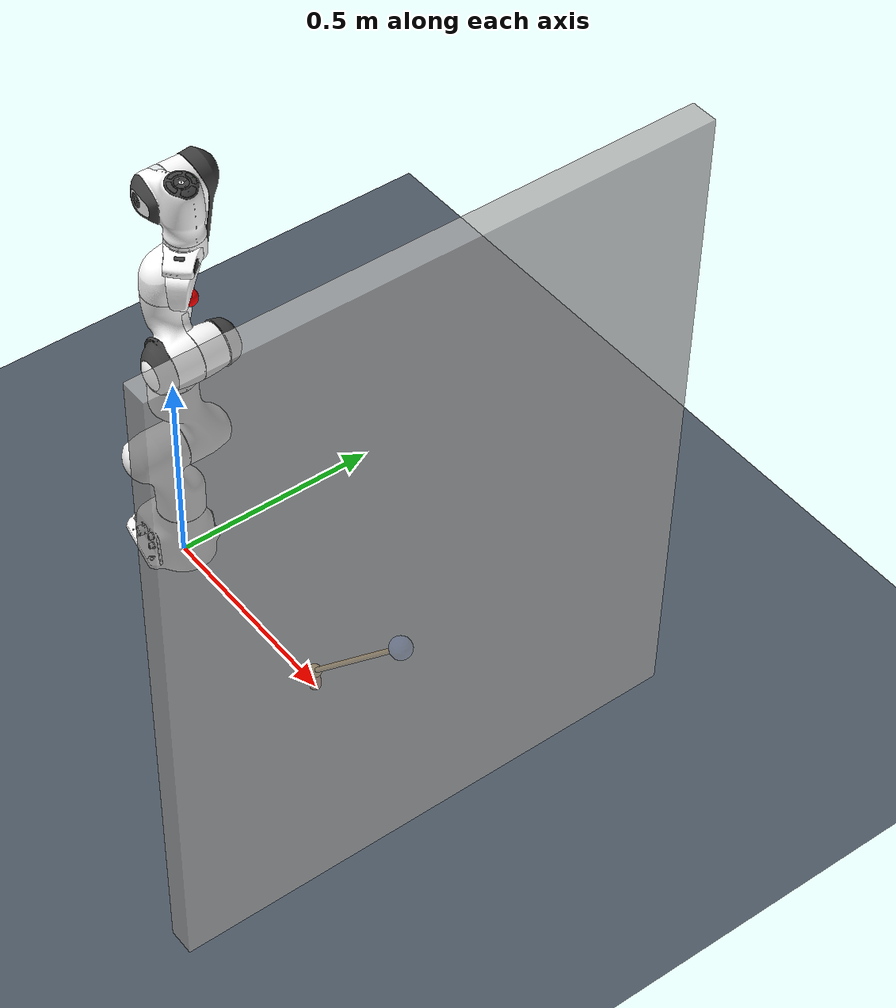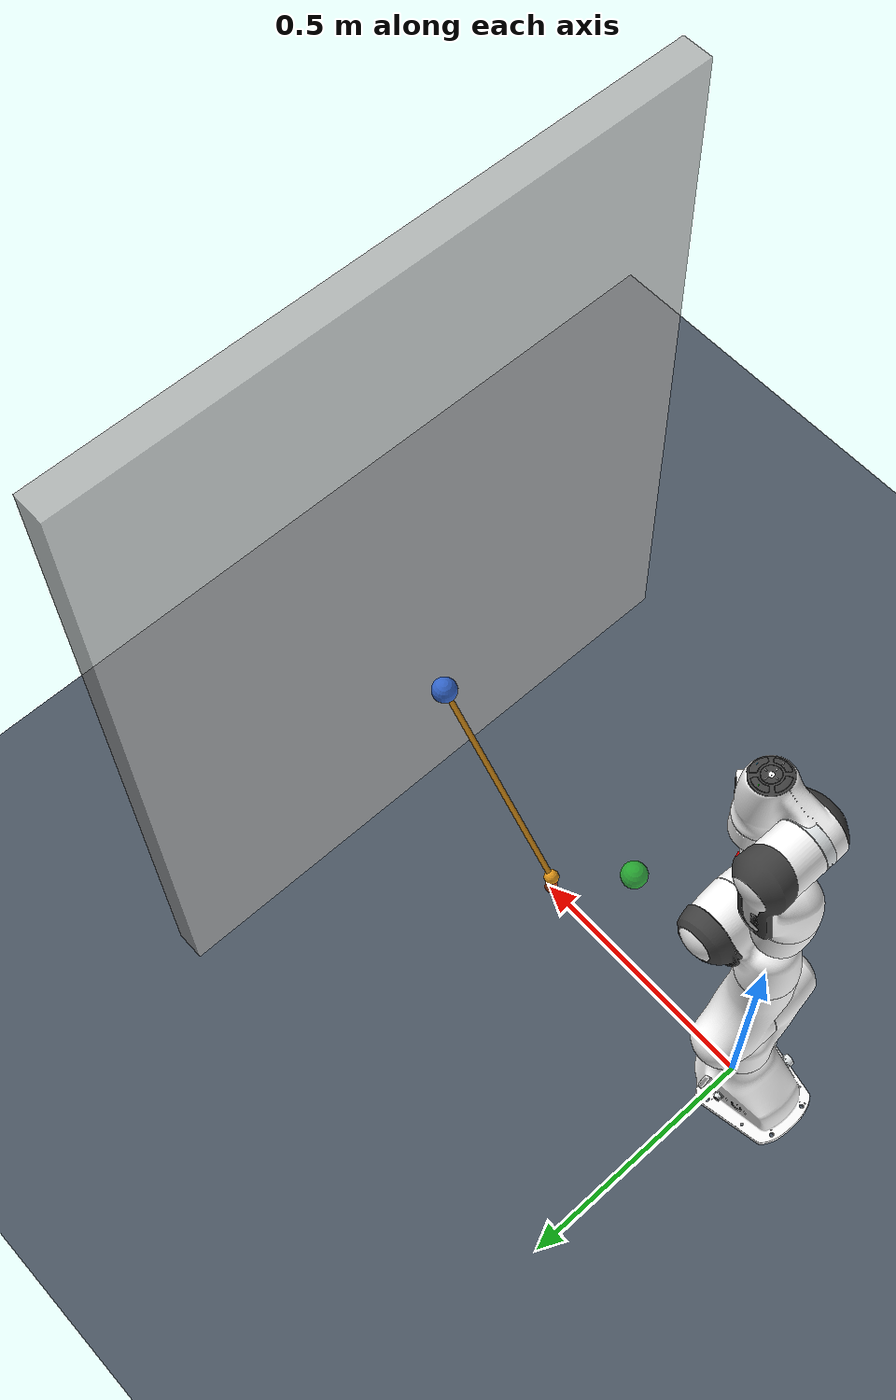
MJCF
<?xml version="1.0" encoding="utf-8"?>
<mujoco model="franka_cable">

  <!-- Official model meshes (mujoco_menagerie) via absolute path -->
  <compiler angle="radian"
            meshdir="/home/eduardo/.cache/robot_descriptions/mujoco_menagerie/franka_emika_panda/assets"
            autolimits="true"/>

  <option timestep="0.002" integrator="implicitfast" impratio="10"
          gravity="0 0 -9.81" cone="elliptic"/>

  <!-- Panda defaults (inertia, materials, geoms) -->
  <default>
    <default class="panda">
      <material specular="0.5" shininess="0.25"/>
      <joint armature="0.1" damping="1" axis="0 0 1" range="-2.8973 2.8973"/>
      <default class="panda/visual">
        <geom type="mesh" contype="0" conaffinity="0" group="2"/>
      </default>
      <default class="panda/collision">
        <geom type="mesh" group="3"/>
        <default class="panda/fingertip_pad_collision_1">
          <geom type="box" size="0.0085 0.004 0.0085" pos="0 0.0055 0.0445"/>
        </default>
        <default class="panda/fingertip_pad_collision_2">
          <geom type="box" size="0.003 0.002 0.003" pos="0.0055 0.002 0.05"/>
        </default>
        <default class="panda/fingertip_pad_collision_3">
          <geom type="box" size="0.003 0.002 0.003" pos="-0.0055 0.002 0.05"/>
        </default>
        <default class="panda/fingertip_pad_collision_4">
          <geom type="box" size="0.003 0.002 0.0035" pos="0.0055 0.002 0.0395"/>
        </default>
        <default class="panda/fingertip_pad_collision_5">
          <geom type="box" size="0.003 0.002 0.0035" pos="-0.0055 0.002 0.0395"/>
        </default>
      </default>
      <default class="panda/finger">
        <joint axis="0 1 0" type="slide" range="0 0.04" armature="0.1" damping="1"/>
      </default>
      <site size="0.001" rgba="0.5 0.5 0.5 0.3" group="4"/>
    </default>
  </default>

  <visual>
    <headlight diffuse="0.6 0.6 0.6" ambient="0.3 0.3 0.3" specular="0 0 0"/>
    <rgba haze="0.15 0.25 0.35 1"/>
    <global offwidth="1280" offheight="720" azimuth="150" elevation="-25"/>
  </visual>

  <asset>
    <!-- Panda materials (from panda_nohand.xml) -->
    <material class="panda" name="white"      rgba="1 1 1 1"/>
    <material class="panda" name="off_white"  rgba="0.901961 0.921569 0.929412 1"/>
    <material class="panda" name="dark_grey"  rgba="0.25 0.25 0.25 1"/>
    <material class="panda" name="black"      rgba="0.25 0.25 0.25 1"/>
    <material class="panda" name="green"      rgba="0 1 0 1"/>
    <material class="panda" name="light_blue" rgba="0.039216 0.541176 0.780392 1"/>

    <!-- Additional scene materials -->
    <material name="anchor_mat"    rgba="0.20 0.40 0.80 1"/>
    <material name="floor_mat"     rgba="0.30 0.35 0.40 1"/>
    <material name="wall_mat"      rgba="0.70 0.70 0.70 0.8"/>
    <material name="connector_mat" rgba="0.8 0.3 0.1 1"/>

    <!-- Panda collision meshes -->
    <mesh name="link0_c"   file="link0.stl"/>
    <mesh name="link1_c"   file="link1.stl"/>
    <mesh name="link2_c"   file="link2.stl"/>
    <mesh name="link3_c"   file="link3.stl"/>
    <mesh name="link4_c"   file="link4.stl"/>
    <mesh name="link5_c0"  file="link5_collision_0.obj"/>
    <mesh name="link5_c1"  file="link5_collision_1.obj"/>
    <mesh name="link5_c2"  file="link5_collision_2.obj"/>
    <mesh name="link6_c"   file="link6.stl"/>
    <mesh name="link7_c"   file="link7.stl"/>

    <!-- Panda visual meshes -->
    <mesh file="link0_0.obj"/>
    <mesh file="link0_1.obj"/>
    <mesh file="link0_2.obj"/>
    <mesh file="link0_3.obj"/>
    <mesh file="link0_4.obj"/>
    <mesh file="link0_5.obj"/>
    <mesh file="link0_7.obj"/>
    <mesh file="link0_8.obj"/>
    <mesh file="link0_9.obj"/>
    <mesh file="link0_10.obj"/>
    <mesh file="link0_11.obj"/>
    <mesh file="link1.obj"/>
    <mesh file="link2.obj"/>
    <mesh file="link3_0.obj"/>
    <mesh file="link3_1.obj"/>
    <mesh file="link3_2.obj"/>
    <mesh file="link3_3.obj"/>
    <mesh file="link4_0.obj"/>
    <mesh file="link4_1.obj"/>
    <mesh file="link4_2.obj"/>
    <mesh file="link4_3.obj"/>
    <mesh file="link5_0.obj"/>
    <mesh file="link5_1.obj"/>
    <mesh file="link5_2.obj"/>
    <mesh file="link6_0.obj"/>
    <mesh file="link6_1.obj"/>
    <mesh file="link6_2.obj"/>
    <mesh file="link6_3.obj"/>
    <mesh file="link6_4.obj"/>
    <mesh file="link6_5.obj"/>
    <mesh file="link6_6.obj"/>
    <mesh file="link6_7.obj"/>
    <mesh file="link6_8.obj"/>
    <mesh file="link6_9.obj"/>
    <mesh file="link6_10.obj"/>
    <mesh file="link6_11.obj"/>
    <mesh file="link6_12.obj"/>
    <mesh file="link6_13.obj"/>
    <mesh file="link6_14.obj"/>
    <mesh file="link6_15.obj"/>
    <mesh file="link6_16.obj"/>
    <mesh file="link7_0.obj"/>
    <mesh file="link7_1.obj"/>
    <mesh file="link7_2.obj"/>
    <mesh file="link7_3.obj"/>
    <mesh file="link7_4.obj"/>
    <mesh file="link7_5.obj"/>
    <mesh file="link7_6.obj"/>
    <mesh file="link7_7.obj"/>

    <!-- Franka Hand meshes -->
    <mesh name="hand_c"  file="hand.stl"/>
    <mesh file="hand_0.obj"/>
    <mesh file="hand_1.obj"/>
    <mesh file="hand_2.obj"/>
    <mesh file="hand_3.obj"/>
    <mesh file="hand_4.obj"/>
    <mesh file="finger_0.obj"/>
    <mesh file="finger_1.obj"/>
  </asset>

  <worldbody>

    <!-- Lighting and floor -->
    <light name="top" pos="0 0 2.5" dir="0 0 -1" directional="true"/>
    <geom name="floor" type="plane" pos="0 0 0" size="3 3 0.05"
          material="floor_mat" contype="1" conaffinity="1"/>

    <!-- Visual wall where cable is fixed (X=0.85m) -->
    <geom name="wall" type="box" pos="0.88 0 0.75" size="0.03 0.6 0.75"
          material="wall_mat" contype="0" conaffinity="0"/>

    <body name="link0" childclass="panda">
      <inertial mass="0.629769" pos="-0.041018 -0.00014 0.049974"
        fullinertia="0.00315 0.00388 0.004285 8.2904e-7 0.00015 8.2299e-6"/>
      <geom mesh="link0_0"  material="off_white" class="panda/visual"/>
      <geom mesh="link0_1"  material="dark_grey" class="panda/visual"/>
      <geom mesh="link0_2"  material="off_white" class="panda/visual"/>
      <geom mesh="link0_3"  material="dark_grey" class="panda/visual"/>
      <geom mesh="link0_4"  material="off_white" class="panda/visual"/>
      <geom mesh="link0_5"  material="dark_grey" class="panda/visual"/>
      <geom mesh="link0_7"  material="white"     class="panda/visual"/>
      <geom mesh="link0_8"  material="white"     class="panda/visual"/>
      <geom mesh="link0_9"  material="dark_grey" class="panda/visual"/>
      <geom mesh="link0_10" material="off_white" class="panda/visual"/>
      <geom mesh="link0_11" material="white"     class="panda/visual"/>
      <geom mesh="link0_c"  class="panda/collision"/>

      <body name="link1" pos="0 0 0.333">
        <inertial mass="4.970684" pos="0.003875 0.002081 -0.04762"
          fullinertia="0.70337 0.70661 0.0091170 -0.00013900 0.0067720 0.019169"/>
        <joint name="joint1"/>
        <geom material="white" mesh="link1"   class="panda/visual"/>
        <geom mesh="link1_c"                  class="panda/collision"/>

        <body name="link2" quat="1 -1 0 0">
          <inertial mass="0.646926" pos="-0.003141 -0.02872 0.003495"
            fullinertia="0.0079620 2.8110e-2 2.5995e-2 -3.925e-3 1.0254e-2 7.04e-4"/>
          <joint name="joint2" range="-1.7628 1.7628"/>
          <geom material="white" mesh="link2" class="panda/visual"/>
          <geom mesh="link2_c"                class="panda/collision"/>

          <body name="link3" pos="0 -0.316 0" quat="1 1 0 0">
            <joint name="joint3"/>
            <inertial mass="3.228604" pos="2.7518e-2 3.9252e-2 -6.6502e-2"
              fullinertia="3.7242e-2 3.6155e-2 1.083e-2 -4.761e-3 -1.1396e-2 -1.2805e-2"/>
            <geom mesh="link3_0" material="white"     class="panda/visual"/>
            <geom mesh="link3_1" material="white"     class="panda/visual"/>
            <geom mesh="link3_2" material="white"     class="panda/visual"/>
            <geom mesh="link3_3" material="dark_grey" class="panda/visual"/>
            <geom mesh="link3_c"                      class="panda/collision"/>

            <body name="link4" pos="0.0825 0 0" quat="1 1 0 0">
              <inertial mass="3.587895" pos="-5.317e-2 1.04419e-1 2.7454e-2"
                fullinertia="2.5853e-2 1.9552e-2 2.8323e-2 7.796e-3 -1.332e-3 8.641e-3"/>
              <joint name="joint4" range="-3.0718 -0.0698"/>
              <geom mesh="link4_0" material="white"     class="panda/visual"/>
              <geom mesh="link4_1" material="white"     class="panda/visual"/>
              <geom mesh="link4_2" material="dark_grey" class="panda/visual"/>
              <geom mesh="link4_3" material="white"     class="panda/visual"/>
              <geom mesh="link4_c"                      class="panda/collision"/>

              <body name="link5" pos="-0.0825 0.384 0" quat="1 -1 0 0">
                <inertial mass="1.225946" pos="-1.1953e-2 4.1065e-2 -3.8437e-2"
                  fullinertia="3.5549e-2 2.9474e-2 8.627e-3 -2.117e-3 -4.037e-3 2.29e-4"/>
                <joint name="joint5"/>
                <geom mesh="link5_0" material="dark_grey" class="panda/visual"/>
                <geom mesh="link5_1" material="white"     class="panda/visual"/>
                <geom mesh="link5_2" material="white"     class="panda/visual"/>
                <geom mesh="link5_c0" class="panda/collision"/>
                <geom mesh="link5_c1" class="panda/collision"/>
                <geom mesh="link5_c2" class="panda/collision"/>

                <body name="link6" quat="1 1 0 0">
                  <inertial mass="1.666555" pos="6.0149e-2 -1.4117e-2 -1.0517e-2"
                    fullinertia="1.964e-3 4.354e-3 5.433e-3 1.09e-4 -1.158e-3 3.41e-4"/>
                  <joint name="joint6" range="-0.0175 3.7525"/>
                  <geom mesh="link6_0"  material="off_white"  class="panda/visual"/>
                  <geom mesh="link6_1"  material="white"      class="panda/visual"/>
                  <geom mesh="link6_2"  material="dark_grey"  class="panda/visual"/>
                  <geom mesh="link6_3"  material="white"      class="panda/visual"/>
                  <geom mesh="link6_4"  material="white"      class="panda/visual"/>
                  <geom mesh="link6_5"  material="white"      class="panda/visual"/>
                  <geom mesh="link6_6"  material="white"      class="panda/visual"/>
                  <geom mesh="link6_7"  material="light_blue" class="panda/visual"/>
                  <geom mesh="link6_8"  material="light_blue" class="panda/visual"/>
                  <geom mesh="link6_9"  material="dark_grey"  class="panda/visual"/>
                  <geom mesh="link6_10" material="dark_grey"  class="panda/visual"/>
                  <geom mesh="link6_11" material="white"      class="panda/visual"/>
                  <geom mesh="link6_12" material="green"      class="panda/visual"/>
                  <geom mesh="link6_13" material="white"      class="panda/visual"/>
                  <geom mesh="link6_14" material="dark_grey"  class="panda/visual"/>
                  <geom mesh="link6_15" material="dark_grey"  class="panda/visual"/>
                  <geom mesh="link6_16" material="white"      class="panda/visual"/>
                  <geom mesh="link6_c"  class="panda/collision"/>

                  <body name="link7" pos="0.088 0 0" quat="1 1 0 0">
                    <inertial mass="7.35522e-01" pos="1.0517e-2 -4.252e-3 6.1597e-2"
                      fullinertia="1.2516e-2 1.0027e-2 4.815e-3 -4.28e-4 -1.196e-3 -7.41e-4"/>
                    <joint name="joint7"/>
                    <geom mesh="link7_0" material="white"     class="panda/visual"/>
                    <geom mesh="link7_1" material="dark_grey" class="panda/visual"/>
                    <geom mesh="link7_2" material="dark_grey" class="panda/visual"/>
                    <geom mesh="link7_3" material="dark_grey" class="panda/visual"/>
                    <geom mesh="link7_4" material="dark_grey" class="panda/visual"/>
                    <geom mesh="link7_5" material="dark_grey" class="panda/visual"/>
                    <geom mesh="link7_6" material="dark_grey" class="panda/visual"/>
                    <geom mesh="link7_7" material="white"     class="panda/visual"/>
                    <geom mesh="link7_c" class="panda/collision"/>

                    <!-- Franka Hand (garra paralela) -->
                    <body name="hand" pos="0 0 0.107" quat="0.9238795 0 0 -0.3826834" childclass="panda">
                      <inertial mass="0.73" pos="-0.01 0 0.03" diaginertia="0.001 0.0025 0.0017"/>
                      <geom mesh="hand_0" material="off_white" class="panda/visual"/>
                      <geom mesh="hand_1" material="black"     class="panda/visual"/>
                      <geom mesh="hand_2" material="black"     class="panda/visual"/>
                      <geom mesh="hand_3" material="white"     class="panda/visual"/>
                      <geom mesh="hand_4" material="off_white" class="panda/visual"/>
                      <geom mesh="hand_c" class="panda/collision"/>
                      <!-- TCP: point between fingertips — controller reference -->
                      <site name="end_effector" pos="0 0 0.112" size="0.02"
                            rgba="1 0 0 1" group="1"/>
                      <body name="left_finger" pos="0 0 0.0584">
                        <inertial mass="0.015" pos="0 0 0" diaginertia="2.375e-6 2.375e-6 7.5e-7"/>
                        <joint name="finger_joint1" class="panda/finger"/>
                        <geom mesh="finger_0" material="off_white" class="panda/visual"/>
                        <geom mesh="finger_1" material="black"     class="panda/visual"/>
                        <geom mesh="finger_0" class="panda/collision"/>
                        <geom class="panda/fingertip_pad_collision_1"/>
                        <geom class="panda/fingertip_pad_collision_2"/>
                        <geom class="panda/fingertip_pad_collision_3"/>
                        <geom class="panda/fingertip_pad_collision_4"/>
                        <geom class="panda/fingertip_pad_collision_5"/>
                      </body>
                      <body name="right_finger" pos="0 0 0.0584" quat="0 0 0 1">
                        <inertial mass="0.015" pos="0 0 0" diaginertia="2.375e-6 2.375e-6 7.5e-7"/>
                        <joint name="finger_joint2" class="panda/finger"/>
                        <geom mesh="finger_0" material="off_white" class="panda/visual"/>
                        <geom mesh="finger_1" material="black"     class="panda/visual"/>
                        <geom mesh="finger_0" class="panda/collision"/>
                        <geom class="panda/fingertip_pad_collision_1"/>
                        <geom class="panda/fingertip_pad_collision_2"/>
                        <geom class="panda/fingertip_pad_collision_3"/>
                        <geom class="panda/fingertip_pad_collision_4"/>
                        <geom class="panda/fingertip_pad_collision_5"/>
                      </body>
                    </body>

                  </body> <!-- link7 -->
                </body> <!-- link6 -->
              </body> <!-- link5 -->
            </body> <!-- link4 -->
          </body> <!-- link3 -->
        </body> <!-- link2 -->
      </body> <!-- link1 -->
    </body> <!-- link0 -->

    <body name="cable_connector" pos="0.5 0.0 0.025">
      <freejoint name="cable_connector_joint"/>
      <inertial mass="0.05" pos="0 0 0" diaginertia="1e-4 1e-4 5e-5"/>
      <geom name="connector_geom" type="cylinder" size="0.012 0.025"
            material="connector_mat" contype="1" conaffinity="1"/>
      <site name="cable_connector_site" pos="0 0 0.025" size="0.015"
            rgba="0.9 0.6 0.1 1" group="1"/>
    </body>

    <body name="anchor" pos="0.8 0 0.4">
      <geom type="sphere" size="0.025" material="anchor_mat"
            contype="1" conaffinity="1"/>
      <site name="anchor_site" pos="0 0 0" size="0.02"
            rgba="0.2 0.4 0.8 1" group="1"/>
    </body>

    <!-- Visual target marker (mocap body — updated at runtime) -->
    <body name="target_marker" mocap="true" pos="0.3 0 0.4">
      <geom type="sphere" size="0.025" rgba="0.1 0.9 0.1 0.6"
            contype="0" conaffinity="0"/>
    </body>

  </worldbody>

  <tendon>
    <!-- Cable: from connector (free body) to anchor on the wall -->
    <spatial name="cable" limited="true" range="0 0.5"
             width="0.006" rgba="0.9 0.6 0.1 1"
             damping="5"
             solreflimit="0.01 1" solimplimit="0.95 0.99 0.001 0.5 2">
      <site site="cable_connector_site"/>
      <site site="anchor_site"/>
    </spatial>
    <!-- Coupled fingers: both move symmetrically -->
    <fixed name="split">
      <joint joint="finger_joint1" coef="0.5"/>
      <joint joint="finger_joint2" coef="0.5"/>
    </fixed>
  </tendon>

  <!-- Finger symmetry + grasp weld (inactive at start) -->
  <equality>
    <joint name="finger_symmetry"
           joint1="finger_joint1" joint2="finger_joint2"
           solimp="0.95 0.99 0.001" solref="0.005 1"/>
    <weld name="grasp_weld"
          body1="hand" body2="cable_connector"
          relpose="0 0 0.112 1 0 0 0"
          solimp="0.95 0.99 0.001" solref="0.005 1"
          active="false"/>
  </equality>

  <actuator>
    <motor name="act1" joint="joint1" gear="1" ctrllimited="true" ctrlrange="-87  87"/>
    <motor name="act2" joint="joint2" gear="1" ctrllimited="true" ctrlrange="-87  87"/>
    <motor name="act3" joint="joint3" gear="1" ctrllimited="true" ctrlrange="-87  87"/>
    <motor name="act4" joint="joint4" gear="1" ctrllimited="true" ctrlrange="-87  87"/>
    <motor name="act5" joint="joint5" gear="1" ctrllimited="true" ctrlrange="-12  12"/>
    <motor name="act6" joint="joint6" gear="1" ctrllimited="true" ctrlrange="-12  12"/>
    <motor name="act7" joint="joint7" gear="1" ctrllimited="true" ctrlrange="-12  12"/>
    <!-- Gripper: ctrl=255→open (0.04m), ctrl=0→closed -->
    <general name="act_gripper" tendon="split" forcerange="-100 100" ctrlrange="0 255"
             gainprm="0.01568627451 0 0" biasprm="0 -100 -10"/>
  </actuator>

  <!-- ================================================================
       SENSORS — reference point positions
       ================================================================ -->
  <sensor>
    <framepos name="ee_pos"     objtype="site" objname="end_effector"/>
    <framepos name="anchor_pos" objtype="site" objname="anchor_site"/>
  </sensor>

  <contact>
    <exclude body1="link0"          body2="link1"/>
    <exclude body1="hand"           body2="left_finger"/>
    <exclude body1="hand"           body2="right_finger"/>
    <exclude body1="cable_connector" body2="left_finger"/>
    <exclude body1="cable_connector" body2="right_finger"/>
  </contact>

  <!-- Initial position: robot at "home", fingers open, connector on the floor -->
  <!-- qpos: 7 arm joints + 2 finger joints + 7 DOFs of connector free joint -->
  <keyframe>
    <key name="home"
         qpos="0 0 0 -1.57079 0 1.57079 -0.78540 0.04 0.04
               0.5 0.0 0.025 1 0 0 0"
         ctrl="0 0 0 0 0 0 0 255"/>
  </keyframe>

</mujoco>
